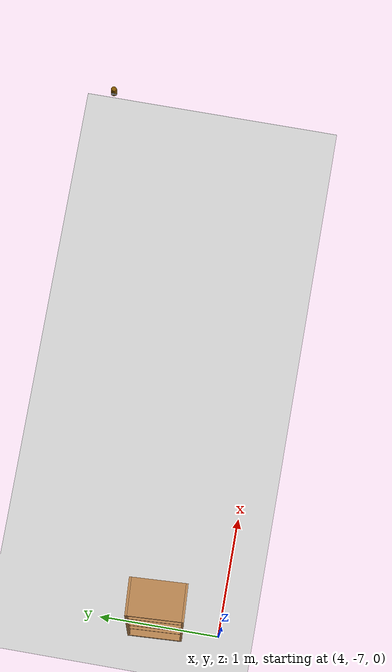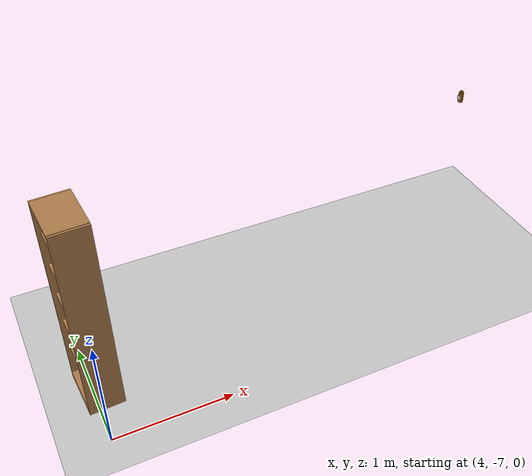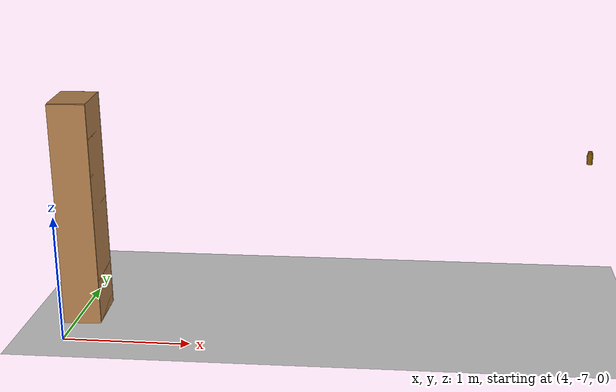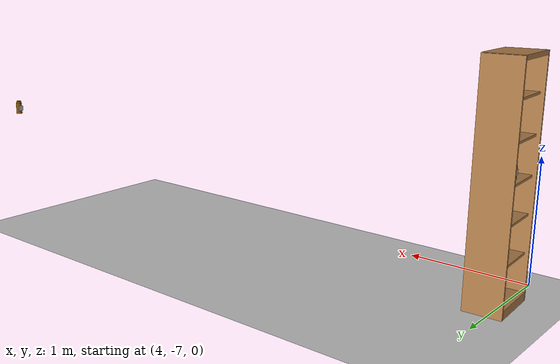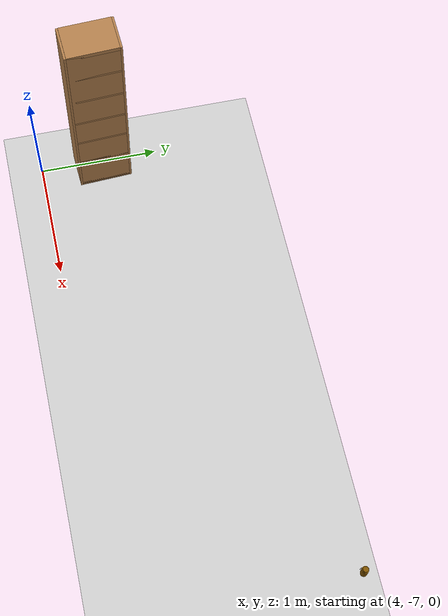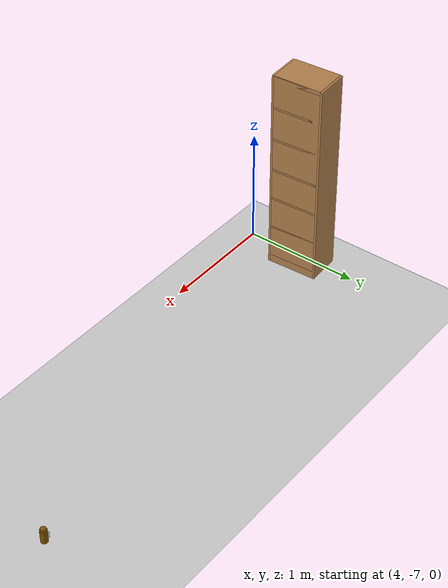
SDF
<sdf version="1.6">
 <world name="default">
  <model name="ground_plane">
   <static>1</static>
   <link name="link">
    <collision name="collision">
     <geometry><plane><normal>0 0 1</normal><size>100 100</size></plane></geometry>
     <surface><friction><ode><mu>100</mu><mu2>50</mu2></ode></friction></surface>
    </collision>
    <visual name="visual">
     <cast_shadows>0</cast_shadows>
     <geometry><plane><normal>0 0 1</normal><size>100 100</size></plane></geometry>
     <material>
      <script><uri>file://media/materials/scripts/gazebo.material</uri><name>Gazebo/Grey</name></script>
     </material>
    </visual>
   </link>
  </model>
  <model name="high_shelf">
   <link name="link">
    <inertial>
     <mass>5</mass>
     <inertia><ixx>1</ixx><ixy>0</ixy><ixz>0</ixz><iyy>1</iyy><iyz>0</iyz><izz>1</izz></inertia>
    </inertial>
    <visual name="left_board">
     <pose>-0.1475 0.009 0.898 0 -0 0</pose>
     <geometry><box><size>0.295 0.018 1.796</size></box></geometry>
     <material>
      <script>
       <uri>model://base_materials/wood/scripts</uri>
       <uri>model://base_materials/wood/textures</uri>
       <name>base_materials/light_wood</name>
      </script>
     </material>
    </visual>
    <collision name="collision_left_board">
     <pose>-0.1475 0.009 0.898 0 -0 0</pose>
     <geometry><box><size>0.295 0.018 1.796</size></box></geometry>
    </collision>
    <visual name="right_board">
     <pose>-0.1475 0.441 0.898 0 -0 0</pose>
     <geometry><box><size>0.295 0.018 1.796</size></box></geometry>
     <material>
      <script>
       <uri>model://base_materials/wood/scripts</uri>
       <uri>model://base_materials/wood/textures</uri>
       <name>base_materials/light_wood</name>
      </script>
     </material>
    </visual>
    <collision name="collision_right_board">
     <pose>-0.1475 0.441 0.898 0 -0 0</pose>
     <geometry><box><size>0.295 0.018 1.796</size></box></geometry>
    </collision>
    <visual name="top_board">
     <pose>-0.1475 0.225 1.7825 0 -0 0</pose>
     <geometry><box><size>0.295 0.414 0.035</size></box></geometry>
     <material>
      <script>
       <uri>model://base_materials/wood/scripts</uri>
       <uri>model://base_materials/wood/textures</uri>
       <name>base_materials/light_wood</name>
      </script>
     </material>
    </visual>
    <collision name="collision_top_board">
     <pose>-0.1475 0.225 1.7825 0 -0 0</pose>
     <geometry><box><size>0.295 0.414 0.035</size></box></geometry>
    </collision>
    <visual name="1st_shelf">
     <pose>-0.162 0.225 1.51 0 -0 0</pose>
     <geometry><box><size>0.266 0.414 0.018</size></box></geometry>
     <material>
      <script>
       <uri>model://base_materials/wood/scripts</uri>
       <uri>model://base_materials/wood/textures</uri>
       <name>base_materials/light_wood</name>
      </script>
     </material>
    </visual>
    <collision name="collision_1st_shelf">
     <pose>-0.162 0.225 1.51 0 -0 0</pose>
     <geometry><box><size>0.266 0.414 0.018</size></box></geometry>
    </collision>
    <visual name="2nd_shelf">
     <pose>-0.162 0.225 1.22 0 -0 0</pose>
     <geometry><box><size>0.266 0.414 0.018</size></box></geometry>
     <material>
      <script>
       <uri>model://base_materials/wood/scripts</uri>
       <uri>model://base_materials/wood/textures</uri>
       <name>base_materials/light_wood</name>
      </script>
     </material>
    </visual>
    <collision name="collision_2nd_shelf">
     <pose>-0.162 0.225 1.22 0 -0 0</pose>
     <geometry><box><size>0.266 0.414 0.018</size></box></geometry>
    </collision>
    <visual name="3rd_shelf">
     <pose>-0.162 0.225 0.93 0 -0 0</pose>
     <geometry><box><size>0.266 0.414 0.018</size></box></geometry>
     <material>
      <script>
       <uri>model://base_materials/wood/scripts</uri>
       <uri>model://base_materials/wood/textures</uri>
       <name>base_materials/light_wood</name>
      </script>
     </material>
    </visual>
    <collision name="collision_3rd_shelf">
     <pose>-0.162 0.225 0.93 0 -0 0</pose>
     <geometry><box><size>0.266 0.414 0.018</size></box></geometry>
    </collision>
    <visual name="4th_shelf">
     <pose>-0.162 0.225 0.65 0 -0 0</pose>
     <geometry><box><size>0.266 0.414 0.018</size></box></geometry>
     <material>
      <script>
       <uri>model://base_materials/wood/scripts</uri>
       <uri>model://base_materials/wood/textures</uri>
       <name>base_materials/light_wood</name>
      </script>
     </material>
    </visual>
    <collision name="collision_4th_shelf">
     <pose>-0.162 0.225 0.65 0 -0 0</pose>
     <geometry><box><size>0.266 0.414 0.018</size></box></geometry>
    </collision>
    <visual name="5th_shelf">
     <pose>-0.162 0.225 0.36 0 -0 0</pose>
     <geometry><box><size>0.266 0.414 0.018</size></box></geometry>
     <material>
      <script>
       <uri>model://base_materials/wood/scripts</uri>
       <uri>model://base_materials/wood/textures</uri>
       <name>base_materials/light_wood</name>
      </script>
     </material>
    </visual>
    <collision name="collision_5th_shelf">
     <pose>-0.162 0.225 0.36 0 -0 0</pose>
     <geometry><box><size>0.266 0.414 0.018</size></box></geometry>
    </collision>
    <visual name="bottom_board">
     <pose>-0.1475 0.225 0.035 0 -0 0</pose>
     <geometry><box><size>0.295 0.414 0.07</size></box></geometry>
     <material>
      <script>
       <uri>model://base_materials/wood/scripts</uri>
       <uri>model://base_materials/wood/textures</uri>
       <name>base_materials/light_wood</name>
      </script>
     </material>
    </visual>
    <collision name="collision_bottom_board">
     <pose>-0.1475 0.225 0.035 0 -0 0</pose>
     <geometry><box><size>0.295 0.414 0.07</size></box></geometry>
    </collision>
    <visual name="back_board">
     <pose>-0.286 0.225 0.898 0 -0 0</pose>
     <geometry><box><size>0.018 0.414 1.796</size></box></geometry>
     <material>
      <script>
       <uri>model://base_materials/wood/scripts</uri>
       <uri>model://base_materials/wood/textures</uri>
       <name>base_materials/light_wood</name>
      </script>
     </material>
    </visual>
    <collision name="collision_back_board">
     <pose>-0.286 0.225 0.898 0 -0 0</pose>
     <geometry><box><size>0.018 0.414 1.796</size></box></geometry>
    </collision>
    <velocity_decay><linear>0</linear><angular>0</angular></velocity_decay>
   </link>
   <static>1</static>
   <pose>3.88802 -6.25445 0 0 0 -3.08817</pose>
  </model>
  <model name="bottle_clone">
   <link name="link">
    <inertial>
     <mass>0.05</mass>
     <inertia><ixx>0.00058</ixx><ixy>0</ixy><ixz>0</ixz><iyy>0.00058</iyy><iyz>0</iyz><izz>0.00016</izz></inertia>
    </inertial>
    <visual name="top">
     <pose>0 0 0.0555 0 -0 0</pose>
     <geometry><cylinder><radius>0.019</radius><length>0.016</length></cylinder></geometry>
     <material>
      <ambient>1 0.647 0 1</ambient>
      <diffuse>0.5 0.3235 0 1</diffuse>
      <specular>0.1 0.1 0.1 1</specular>
      <emissive>0 0 0 0</emissive>
     </material>
    </visual>
    <collision name="collision_top">
     <pose>0 0 0.0555 0 -0 0</pose>
     <geometry><cylinder><radius>0.019</radius><length>0.016</length></cylinder></geometry>
     <surface>
      <bounce><restitution_coefficient>0.2</restitution_coefficient><threshold>0</threshold></bounce>
      <contact><ode><kp>10000</kp><max_vel>10</max_vel></ode></contact>
     </surface>
    </collision>
    <visual name="bottom">
     <geometry><cylinder><radius>0.0245</radius><length>0.095</length></cylinder></geometry>
     <material>
      <ambient>1 0.7 0.3 1</ambient>
      <diffuse>0.5 0.3235 0 1</diffuse>
      <specular>0.1 0.1 0.1 1</specular>
      <emissive>0 0 0 0</emissive>
     </material>
    </visual>
    <collision name="collision_bottom">
     <geometry><cylinder><radius>0.0245</radius><length>0.095</length></cylinder></geometry>
     <surface>
      <bounce><restitution_coefficient>0.2</restitution_coefficient><threshold>0</threshold></bounce>
      <contact><ode><kp>100000</kp><max_vel>10</max_vel></ode></contact>
     </surface>
    </collision>
    <velocity_decay><linear>0</linear><angular>0</angular></velocity_decay>
    <visual name="marker_4000">
     <pose>0.0245 0 0 0 1.57 3.141</pose>
     <geometry><box><size>0.045 0.045 0.0001</size></box></geometry>
     <material>
      <script>
       <uri>model://marker/4000/scripts</uri>
       <uri>model://marker/4000/textures</uri>
       <name>Marker/4000</name>
      </script>
     </material>
    </visual>
   </link>
   <static>0</static>
   <pose>8.16129 -5.39414 1.0975 -1e-06 -8e-06 -3.072</pose>
  </model>
  <model name="bottle_clone_3">
   <link name="link">
    <inertial>
     <mass>0.05</mass>
     <inertia><ixx>0.00058</ixx><ixy>0</ixy><ixz>0</ixz><iyy>0.00058</iyy><iyz>0</iyz><izz>0.00016</izz></inertia>
    </inertial>
    <visual name="top">
     <pose>0 0 0.0555 0 -0 0</pose>
     <geometry><cylinder><radius>0.019</radius><length>0.016</length></cylinder></geometry>
     <material>
      <ambient>1 0.647 0 1</ambient>
      <diffuse>0.5 0.3235 0 1</diffuse>
      <specular>0.1 0.1 0.1 1</specular>
      <emissive>0 0 0 0</emissive>
     </material>
    </visual>
    <collision name="collision_top">
     <pose>0 0 0.0555 0 -0 0</pose>
     <geometry><cylinder><radius>0.019</radius><length>0.016</length></cylinder></geometry>
     <surface>
      <bounce><restitution_coefficient>0.2</restitution_coefficient><threshold>0</threshold></bounce>
      <contact><ode><kp>10000</kp><max_vel>10</max_vel></ode></contact>
     </surface>
    </collision>
    <visual name="bottom">
     <geometry><cylinder><radius>0.0245</radius><length>0.095</length></cylinder></geometry>
     <material>
      <ambient>1 0.7 0.3 1</ambient>
      <diffuse>0.5 0.3235 0 1</diffuse>
      <specular>0.1 0.1 0.1 1</specular>
      <emissive>0 0 0 0</emissive>
     </material>
    </visual>
    <collision name="collision_bottom">
     <geometry><cylinder><radius>0.0245</radius><length>0.095</length></cylinder></geometry>
     <surface>
      <bounce><restitution_coefficient>0.2</restitution_coefficient><threshold>0</threshold></bounce>
      <contact><ode><kp>100000</kp><max_vel>10</max_vel></ode></contact>
     </surface>
    </collision>
    <velocity_decay><linear>0</linear><angular>0</angular></velocity_decay>
    <visual name="marker_4000">
     <pose>0.0245 0 0 0 1.57 3.141</pose>
     <geometry><box><size>0.045 0.045 0.0001</size></box></geometry>
     <material>
      <script>
       <uri>model://marker/4000/scripts</uri>
       <uri>model://marker/4000/textures</uri>
       <name>Marker/4000</name>
      </script>
     </material>
    </visual>
   </link>
   <static>0</static>
   <pose>3.99726 -6.49087 0.9865 -8e-06 -8e-06 -3.10329</pose>
  </model>
 </world>
</sdf>
